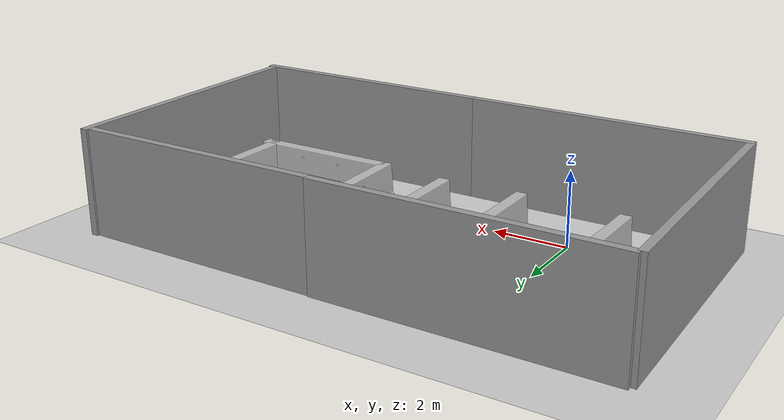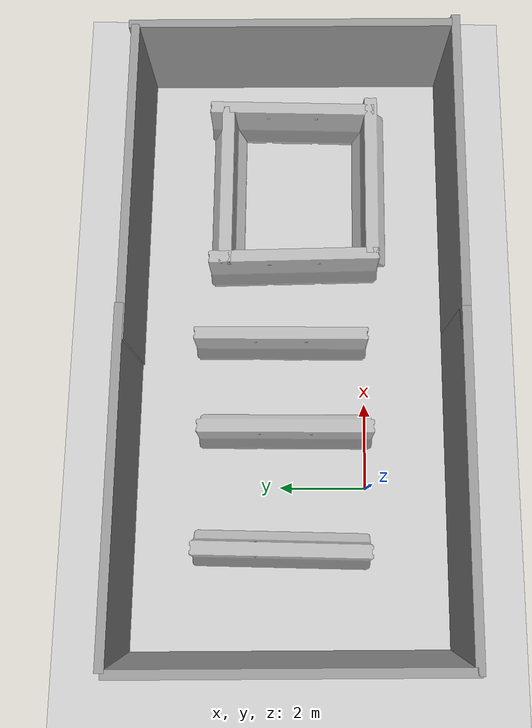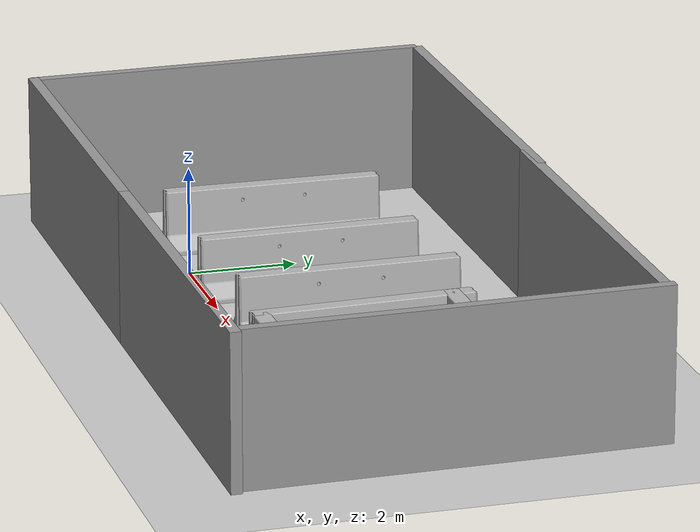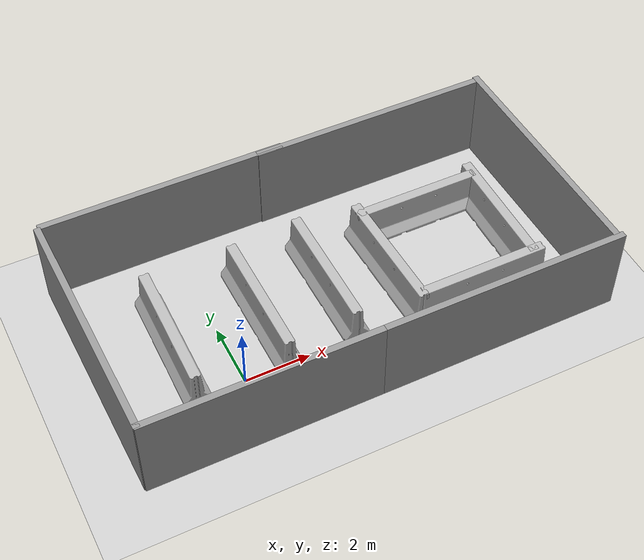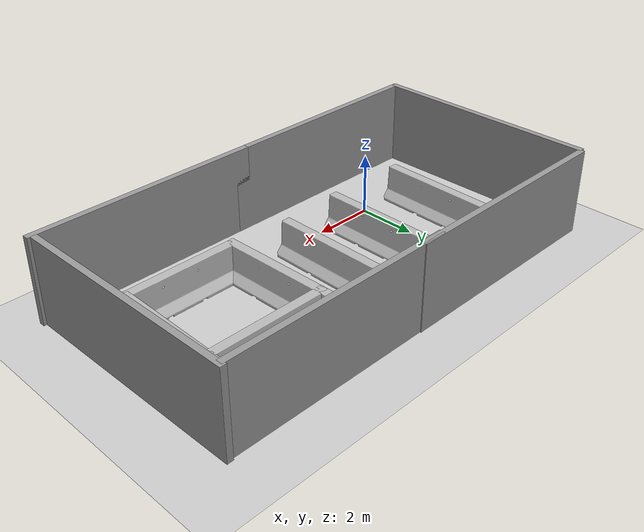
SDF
<sdf version="1.6">
 <world name="default">
  <light name="sun" type="directional">
   <pose>0 0 10 0 -0 0</pose>
   <diffuse>0.8 0.8 0.8 1</diffuse>
   <specular>0.1 0.1 0.1 1</specular>
   <attenuation>
    <range>1000</range>
    <constant>0.9</constant>
    <linear>0.01</linear>
    <quadratic>0.001</quadratic>
   </attenuation>
   <direction>-0.5 0.5 -1</direction>
  </light>
  <model name="ground_plane">
   <static>1</static>
   <link name="link">
    <collision name="collision">
     <geometry><plane><normal>0 0 1</normal><size>100 100</size></plane></geometry>
     <surface><friction><ode><mu>100</mu><mu2>50</mu2></ode></friction></surface>
    </collision>
    <visual name="visual">
     <cast_shadows>0</cast_shadows>
     <geometry><plane><normal>0 0 1</normal><size>100 100</size></plane></geometry>
     <material>
      <script><uri>file://media/materials/scripts/gazebo.material</uri><name>Gazebo/Grey</name></script>
     </material>
    </visual>
   </link>
  </model>
  <gravity>0 0 -9.8</gravity>
  <magnetic_field>6e-06 2.3e-05 -4.2e-05</magnetic_field>
  <atmosphere type="adiabatic"/>
  <physics name="default_physics" default="0" type="ode">
   <max_step_size>0.001</max_step_size>
   <real_time_factor>1</real_time_factor>
   <real_time_update_rate>1000</real_time_update_rate>
  </physics>
  <scene><ambient>0.4 0.4 0.4 1</ambient><background>0.7 0.7 0.7 1</background><shadows>1</shadows></scene>
  <spherical_coordinates>
   <surface_model>EARTH_WGS84</surface_model>
   <latitude_deg>0</latitude_deg>
   <longitude_deg>0</longitude_deg>
   <elevation>0</elevation>
   <heading_deg>0</heading_deg>
  </spherical_coordinates>
  <model name="Untitled9">
   <model name="grey_wall">
    <static>1</static>
    <link name="link">
     <pose>0 0 1.4 0 -0 0</pose>
     <collision name="collision"><geometry><box><size>7.5 0.2 2.8</size></box></geometry></collision>
     <visual name="visual">
      <cast_shadows>0</cast_shadows>
      <geometry><box><size>7.5 0.2 2.8</size></box></geometry>
      <material>
       <script>
        <uri>model://grey_wall/materials/scripts</uri>
        <uri>model://grey_wall/materials/textures</uri>
        <name>vrc/grey_wall</name>
       </script>
      </material>
     </visual>
    </link>
    <pose>-4.09497 -3.7636 0 0 -0 0</pose>
   </model>
   <model name="grey_wall_0">
    <static>1</static>
    <link name="link">
     <pose>0 0 1.4 0 -0 0</pose>
     <collision name="collision"><geometry><box><size>7.5 0.2 2.8</size></box></geometry></collision>
     <visual name="visual">
      <cast_shadows>0</cast_shadows>
      <geometry><box><size>7.5 0.2 2.8</size></box></geometry>
      <material>
       <script>
        <uri>model://grey_wall/materials/scripts</uri>
        <uri>model://grey_wall/materials/textures</uri>
        <name>vrc/grey_wall</name>
       </script>
      </material>
     </visual>
    </link>
    <pose>2.90503 -3.7636 0 0 -0 0</pose>
   </model>
   <model name="grey_wall_1">
    <static>1</static>
    <link name="link">
     <pose>0 0 1.4 0 -0 0</pose>
     <collision name="collision"><geometry><box><size>7.5 0.2 2.8</size></box></geometry></collision>
     <visual name="visual">
      <cast_shadows>0</cast_shadows>
      <geometry><box><size>7.5 0.2 2.8</size></box></geometry>
      <material>
       <script>
        <uri>model://grey_wall/materials/scripts</uri>
        <uri>model://grey_wall/materials/textures</uri>
        <name>vrc/grey_wall</name>
       </script>
      </material>
     </visual>
    </link>
    <pose>-7.81884 -0.065457 0 0 0 -1.55664</pose>
   </model>
   <model name="grey_wall_1_clone">
    <static>1</static>
    <link name="link">
     <pose>0 0 1.4 0 -0 0</pose>
     <collision name="collision"><geometry><box><size>7.5 0.2 2.8</size></box></geometry></collision>
     <visual name="visual">
      <cast_shadows>0</cast_shadows>
      <geometry><box><size>7.5 0.2 2.8</size></box></geometry>
      <material>
       <script>
        <uri>model://grey_wall/materials/scripts</uri>
        <uri>model://grey_wall/materials/textures</uri>
        <name>vrc/grey_wall</name>
       </script>
      </material>
     </visual>
    </link>
    <pose>6.40994 0.070037 0 0 0 -1.55664</pose>
   </model>
   <model name="grey_wall_2">
    <static>1</static>
    <link name="link">
     <pose>0 0 1.4 0 -0 0</pose>
     <collision name="collision"><geometry><box><size>7.5 0.2 2.8</size></box></geometry></collision>
     <visual name="visual">
      <cast_shadows>0</cast_shadows>
      <geometry><box><size>7.5 0.2 2.8</size></box></geometry>
      <material>
       <script>
        <uri>model://grey_wall/materials/scripts</uri>
        <uri>model://grey_wall/materials/textures</uri>
        <name>vrc/grey_wall</name>
       </script>
      </material>
     </visual>
    </link>
    <pose>-4.09497 3.69566 0 0 -0 0</pose>
   </model>
   <model name="grey_wall_3">
    <static>1</static>
    <link name="link">
     <pose>0 0 1.4 0 -0 0</pose>
     <collision name="collision"><geometry><box><size>7.5 0.2 2.8</size></box></geometry></collision>
     <visual name="visual">
      <cast_shadows>0</cast_shadows>
      <geometry><box><size>7.5 0.2 2.8</size></box></geometry>
      <material>
       <script>
        <uri>model://grey_wall/materials/scripts</uri>
        <uri>model://grey_wall/materials/textures</uri>
        <name>vrc/grey_wall</name>
       </script>
      </material>
     </visual>
    </link>
    <pose>2.60059 3.66392 0 0 -0 0</pose>
   </model>
   <model name="jersey_barrier">
    <static>1</static>
    <link name="link">
     <visual name="visual">
      <geometry><mesh><uri>model://jersey_barrier/meshes/jersey_barrier.dae</uri></mesh></geometry>
     </visual>
     <collision name="upright">
      <pose>0 0 0.5715 0 -0 0</pose>
      <geometry><box><size>4.06542 0.3063 1.143</size></box></geometry>
     </collision>
     <collision name="base">
      <pose>0 0 0.032258 0 -0 0</pose>
      <geometry><box><size>4.06542 0.8107 0.064516</size></box></geometry>
     </collision>
     <collision name="base2">
      <pose>0 0 0.1 0 -0 0</pose>
      <geometry><box><size>4.06542 0.65 0.1</size></box></geometry>
     </collision>
     <collision name="base3">
      <pose>0 0 0.2 0 -0 0</pose>
      <geometry><box><size>4.06542 0.5 0.1</size></box></geometry>
     </collision>
     <collision name="left-angle">
      <pose>0 -0.224 0.2401 0.9 -0 0</pose>
      <geometry><box><size>4.06542 0.5 0.064516</size></box></geometry>
     </collision>
     <collision name="right-angle">
      <pose>0 0.224 0.2401 -0.9 0 0</pose>
      <geometry><box><size>4.06542 0.5 0.064516</size></box></geometry>
     </collision>
    </link>
    <pose>3.38861 -1.91317 0 0 -0 0</pose>
   </model>
   <model name="jersey_barrier_0">
    <static>1</static>
    <link name="link">
     <visual name="visual">
      <geometry><mesh><uri>model://jersey_barrier/meshes/jersey_barrier.dae</uri></mesh></geometry>
     </visual>
     <collision name="upright">
      <pose>0 0 0.5715 0 -0 0</pose>
      <geometry><box><size>4.06542 0.3063 1.143</size></box></geometry>
     </collision>
     <collision name="base">
      <pose>0 0 0.032258 0 -0 0</pose>
      <geometry><box><size>4.06542 0.8107 0.064516</size></box></geometry>
     </collision>
     <collision name="base2">
      <pose>0 0 0.1 0 -0 0</pose>
      <geometry><box><size>4.06542 0.65 0.1</size></box></geometry>
     </collision>
     <collision name="base3">
      <pose>0 0 0.2 0 -0 0</pose>
      <geometry><box><size>4.06542 0.5 0.1</size></box></geometry>
     </collision>
     <collision name="left-angle">
      <pose>0 -0.224 0.2401 0.9 -0 0</pose>
      <geometry><box><size>4.06542 0.5 0.064516</size></box></geometry>
     </collision>
     <collision name="right-angle">
      <pose>0 0.224 0.2401 -0.9 0 0</pose>
      <geometry><box><size>4.06542 0.5 0.064516</size></box></geometry>
     </collision>
    </link>
    <pose>3.13524 1.58841 0 0 -0 0</pose>
   </model>
   <model name="jersey_barrier_0_clone">
    <static>1</static>
    <link name="link">
     <visual name="visual">
      <geometry><mesh><uri>model://jersey_barrier/meshes/jersey_barrier.dae</uri></mesh></geometry>
     </visual>
     <collision name="upright">
      <pose>0 0 0.5715 0 -0 0</pose>
      <geometry><box><size>4.06542 0.3063 1.143</size></box></geometry>
     </collision>
     <collision name="base">
      <pose>0 0 0.032258 0 -0 0</pose>
      <geometry><box><size>4.06542 0.8107 0.064516</size></box></geometry>
     </collision>
     <collision name="base2">
      <pose>0 0 0.1 0 -0 0</pose>
      <geometry><box><size>4.06542 0.65 0.1</size></box></geometry>
     </collision>
     <collision name="base3">
      <pose>0 0 0.2 0 -0 0</pose>
      <geometry><box><size>4.06542 0.5 0.1</size></box></geometry>
     </collision>
     <collision name="left-angle">
      <pose>0 -0.224 0.2401 0.9 -0 0</pose>
      <geometry><box><size>4.06542 0.5 0.064516</size></box></geometry>
     </collision>
     <collision name="right-angle">
      <pose>0 0.224 0.2401 -0.9 0 0</pose>
      <geometry><box><size>4.06542 0.5 0.064516</size></box></geometry>
     </collision>
    </link>
    <pose>-5.49404 0.178036 0 0 -0 1.55644</pose>
   </model>
   <model name="jersey_barrier_0_clone_0">
    <static>1</static>
    <link name="link">
     <visual name="visual">
      <geometry><mesh><uri>model://jersey_barrier/meshes/jersey_barrier.dae</uri></mesh></geometry>
     </visual>
     <collision name="upright">
      <pose>0 0 0.5715 0 -0 0</pose>
      <geometry><box><size>4.06542 0.3063 1.143</size></box></geometry>
     </collision>
     <collision name="base">
      <pose>0 0 0.032258 0 -0 0</pose>
      <geometry><box><size>4.06542 0.8107 0.064516</size></box></geometry>
     </collision>
     <collision name="base2">
      <pose>0 0 0.1 0 -0 0</pose>
      <geometry><box><size>4.06542 0.65 0.1</size></box></geometry>
     </collision>
     <collision name="base3">
      <pose>0 0 0.2 0 -0 0</pose>
      <geometry><box><size>4.06542 0.5 0.1</size></box></geometry>
     </collision>
     <collision name="left-angle">
      <pose>0 -0.224 0.2401 0.9 -0 0</pose>
      <geometry><box><size>4.06542 0.5 0.064516</size></box></geometry>
     </collision>
     <collision name="right-angle">
      <pose>0 0.224 0.2401 -0.9 0 0</pose>
      <geometry><box><size>4.06542 0.5 0.064516</size></box></geometry>
     </collision>
    </link>
    <pose>-2.7603 0.113883 0 0 -0 1.57448</pose>
   </model>
   <model name="jersey_barrier_0_clone_0_clone">
    <static>1</static>
    <link name="link">
     <visual name="visual">
      <geometry><mesh><uri>model://jersey_barrier/meshes/jersey_barrier.dae</uri></mesh></geometry>
     </visual>
     <collision name="upright">
      <pose>0 0 0.5715 0 -0 0</pose>
      <geometry><box><size>4.06542 0.3063 1.143</size></box></geometry>
     </collision>
     <collision name="base">
      <pose>0 0 0.032258 0 -0 0</pose>
      <geometry><box><size>4.06542 0.8107 0.064516</size></box></geometry>
     </collision>
     <collision name="base2">
      <pose>0 0 0.1 0 -0 0</pose>
      <geometry><box><size>4.06542 0.65 0.1</size></box></geometry>
     </collision>
     <collision name="base3">
      <pose>0 0 0.2 0 -0 0</pose>
      <geometry><box><size>4.06542 0.5 0.1</size></box></geometry>
     </collision>
     <collision name="left-angle">
      <pose>0 -0.224 0.2401 0.9 -0 0</pose>
      <geometry><box><size>4.06542 0.5 0.064516</size></box></geometry>
     </collision>
     <collision name="right-angle">
      <pose>0 0.224 0.2401 -0.9 0 0</pose>
      <geometry><box><size>4.06542 0.5 0.064516</size></box></geometry>
     </collision>
    </link>
    <pose>-0.599139 0.236397 0 0 -0 1.57448</pose>
   </model>
   <model name="jersey_barrier_0_clone_1">
    <static>1</static>
    <link name="link">
     <visual name="visual">
      <geometry><mesh><uri>model://jersey_barrier/meshes/jersey_barrier.dae</uri></mesh></geometry>
     </visual>
     <collision name="upright">
      <pose>0 0 0.5715 0 -0 0</pose>
      <geometry><box><size>4.06542 0.3063 1.143</size></box></geometry>
     </collision>
     <collision name="base">
      <pose>0 0 0.032258 0 -0 0</pose>
      <geometry><box><size>4.06542 0.8107 0.064516</size></box></geometry>
     </collision>
     <collision name="base2">
      <pose>0 0 0.1 0 -0 0</pose>
      <geometry><box><size>4.06542 0.65 0.1</size></box></geometry>
     </collision>
     <collision name="base3">
      <pose>0 0 0.2 0 -0 0</pose>
      <geometry><box><size>4.06542 0.5 0.1</size></box></geometry>
     </collision>
     <collision name="left-angle">
      <pose>0 -0.224 0.2401 0.9 -0 0</pose>
      <geometry><box><size>4.06542 0.5 0.064516</size></box></geometry>
     </collision>
     <collision name="right-angle">
      <pose>0 0.224 0.2401 -0.9 0 0</pose>
      <geometry><box><size>4.06542 0.5 0.064516</size></box></geometry>
     </collision>
    </link>
    <pose>1.31392 -0.050591 0 0 0 -1.5381</pose>
   </model>
   <model name="jersey_barrier_0_clone_2">
    <static>1</static>
    <link name="link">
     <visual name="visual">
      <geometry><mesh><uri>model://jersey_barrier/meshes/jersey_barrier.dae</uri></mesh></geometry>
     </visual>
     <collision name="upright">
      <pose>0 0 0.5715 0 -0 0</pose>
      <geometry><box><size>4.06542 0.3063 1.143</size></box></geometry>
     </collision>
     <collision name="base">
      <pose>0 0 0.032258 0 -0 0</pose>
      <geometry><box><size>4.06542 0.8107 0.064516</size></box></geometry>
     </collision>
     <collision name="base2">
      <pose>0 0 0.1 0 -0 0</pose>
      <geometry><box><size>4.06542 0.65 0.1</size></box></geometry>
     </collision>
     <collision name="base3">
      <pose>0 0 0.2 0 -0 0</pose>
      <geometry><box><size>4.06542 0.5 0.1</size></box></geometry>
     </collision>
     <collision name="left-angle">
      <pose>0 -0.224 0.2401 0.9 -0 0</pose>
      <geometry><box><size>4.06542 0.5 0.064516</size></box></geometry>
     </collision>
     <collision name="right-angle">
      <pose>0 0.224 0.2401 -0.9 0 0</pose>
      <geometry><box><size>4.06542 0.5 0.064516</size></box></geometry>
     </collision>
    </link>
    <pose>5.10895 0.010079 0 0 0 -1.58218</pose>
   </model>
   <static>0</static>
   <pose>4.09497 1.7636 0 0 -0 0</pose>
  </model>
 </world>
</sdf>
